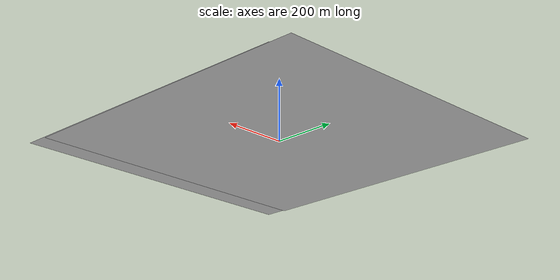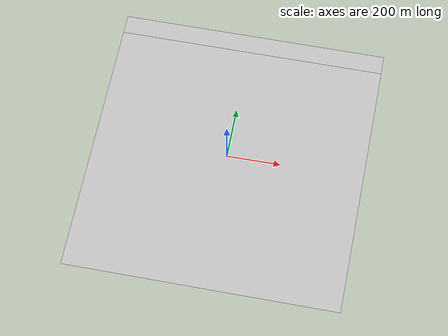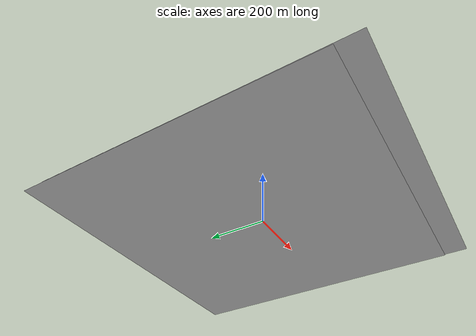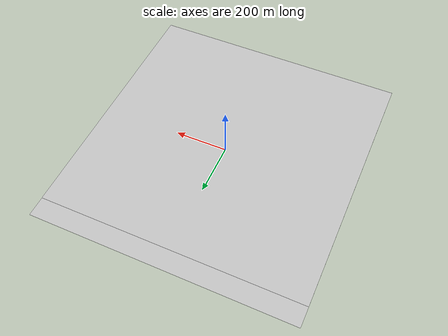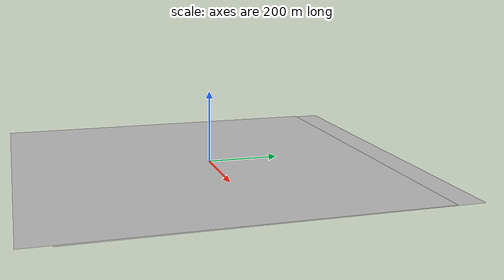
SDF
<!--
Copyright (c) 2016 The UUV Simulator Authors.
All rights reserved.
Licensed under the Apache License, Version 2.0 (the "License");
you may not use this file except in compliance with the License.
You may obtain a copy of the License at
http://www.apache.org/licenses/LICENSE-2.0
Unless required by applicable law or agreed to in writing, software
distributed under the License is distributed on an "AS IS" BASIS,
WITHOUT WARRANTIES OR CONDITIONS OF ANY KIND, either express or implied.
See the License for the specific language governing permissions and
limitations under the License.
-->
<?xml version="1.0" ?>
<sdf version="1.5">
  <model name="Solo Marinho">
    <static>true</static>
    <link name="link">
      <collision name="solo_marinho">
        <pose>0 0 0 3.14 0 0</pose>
	<scale>100 100 1</scale>
        <geometry>
          <mesh><uri>model://solo_marinho/meshes/areia3.dae</uri></mesh>
        </geometry>
      </collision>

      <visual name="solo_marinho">
        <cast_shadows>true</cast_shadows>
        <pose>0 0 0 3.14 0 0</pose>
	<scale>100 100 1</scale>
        <geometry>
          <mesh><uri>model://solo_marinho/meshes/areia3.dae</uri></mesh>
        </geometry>
      </visual>

      <visual name="solo_marinho">
        <cast_shadows>true</cast_shadows>
        <pose>0 0 -2 0 0 0</pose>
	<scale>100 100 1</scale>
        <geometry>
          <mesh><uri>model://solo_marinho/meshes/areia3.dae</uri></mesh>
        </geometry>
      </visual>

    </link>
  </model>
</sdf>
